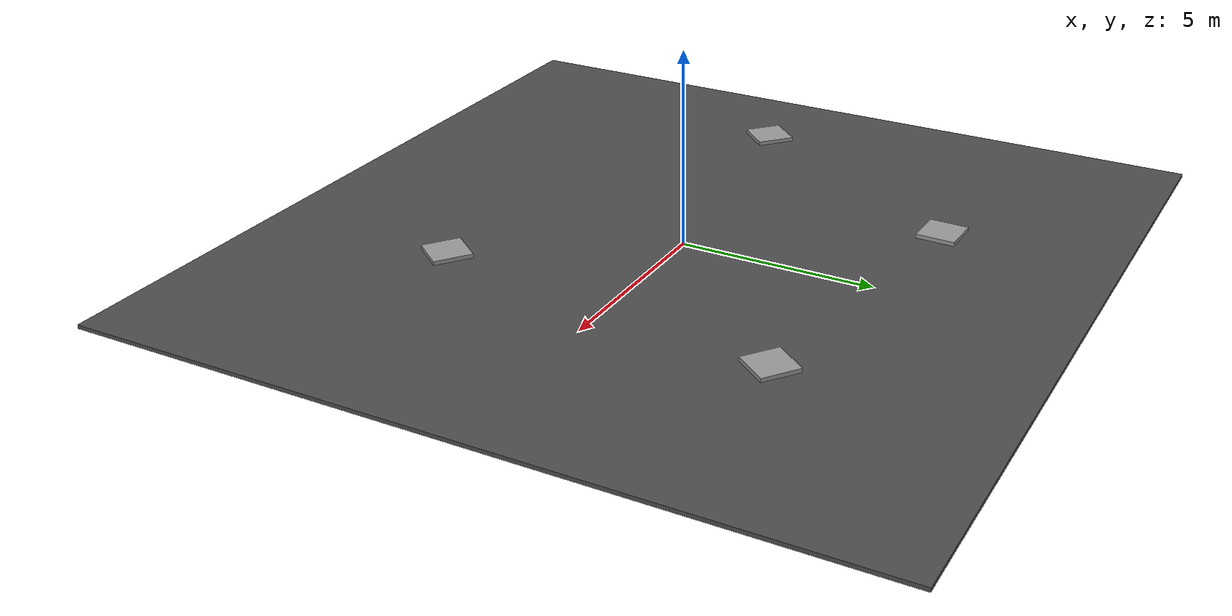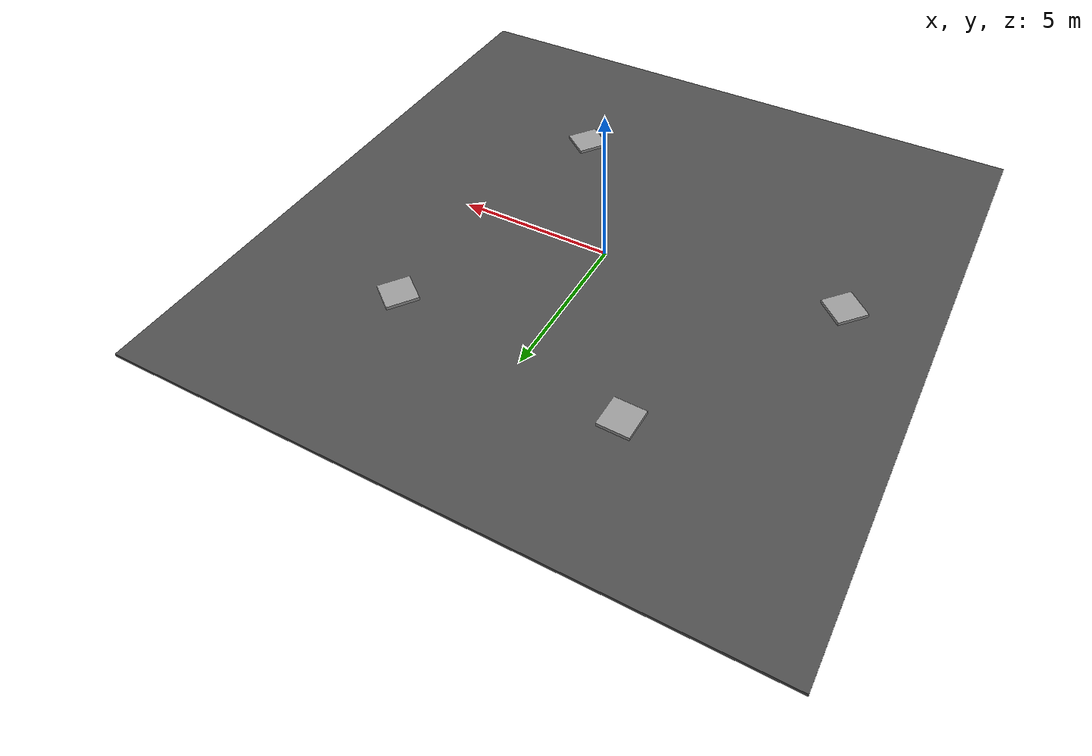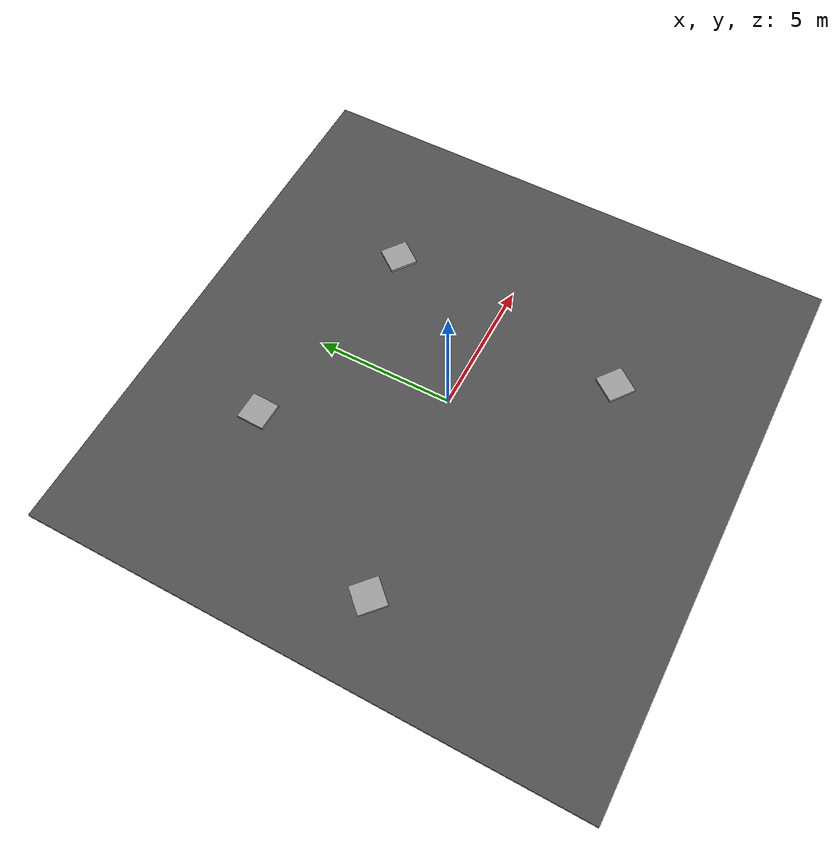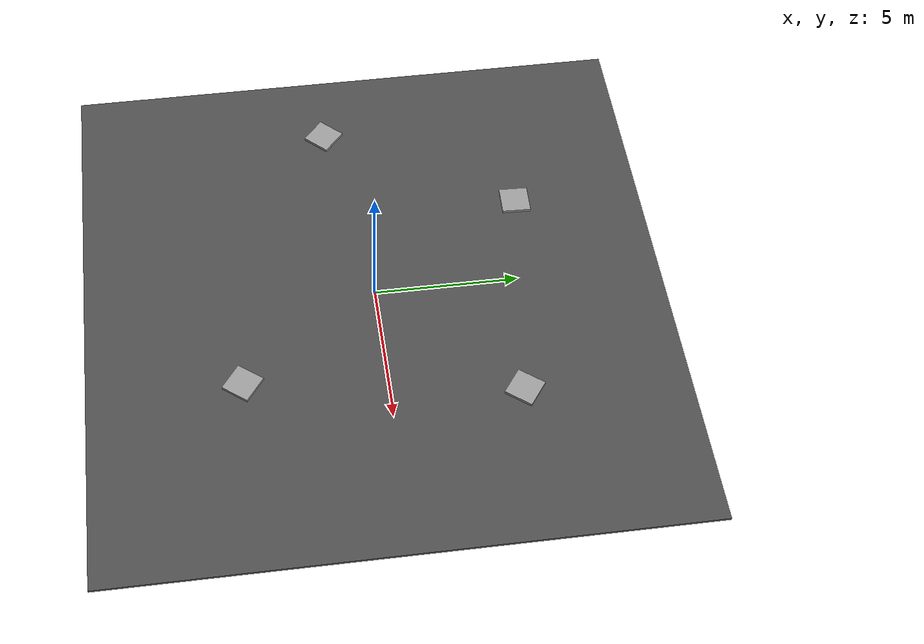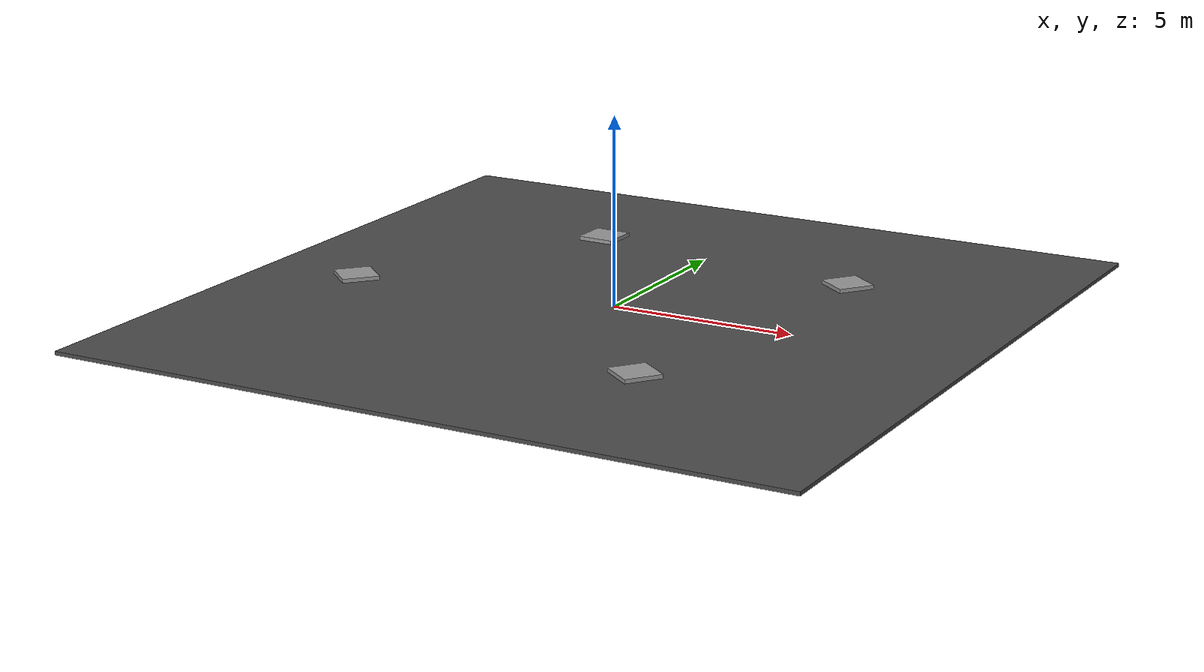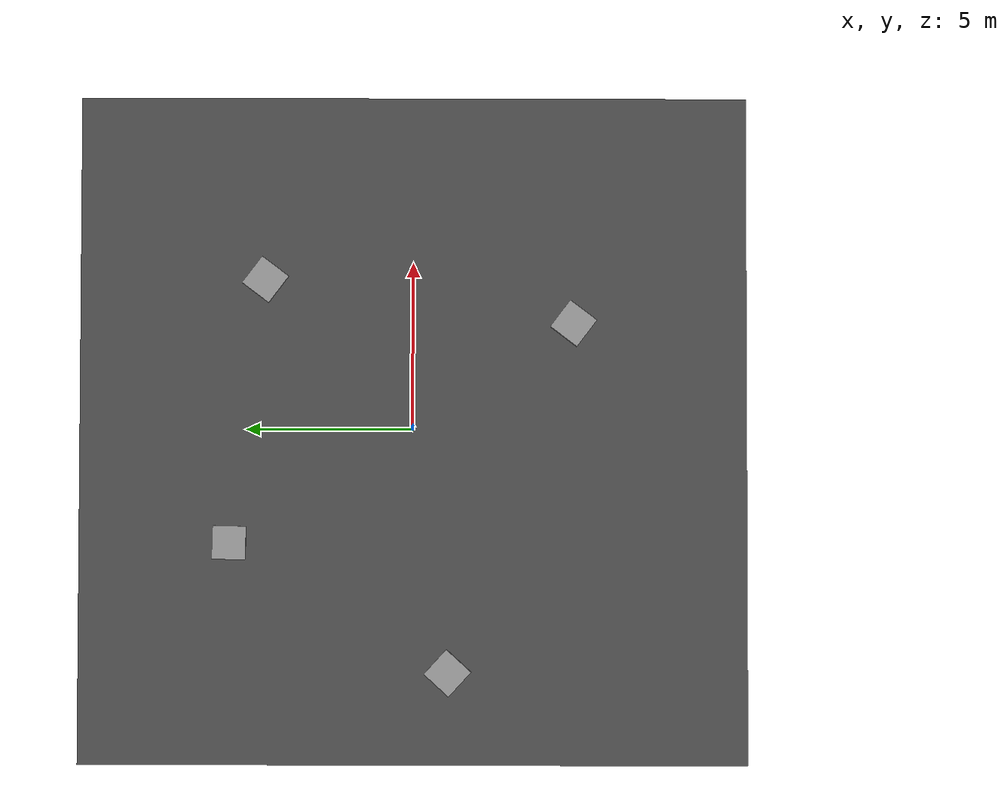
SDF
<sdf version="1.6">
 <world name="default">
  <light name="sun" type="directional">
   <pose>0 0 10 0 -0 0</pose>
   <diffuse>0.8 0.8 0.8 1</diffuse>
   <specular>0.1 0.1 0.1 1</specular>
   <attenuation>
    <range>1000</range>
    <constant>0.9</constant>
    <linear>0.01</linear>
    <quadratic>0.001</quadratic>
   </attenuation>
   <direction>-0.5 0.5 -1</direction>
  </light>
  <gravity>0 0 -9.8</gravity>
  <magnetic_field>6e-06 2.3e-05 -4.2e-05</magnetic_field>
  <atmosphere type="adiabatic"/>
  <physics name="default_physics" default="0" type="ode">
   <max_step_size>0.001</max_step_size>
   <real_time_factor>1</real_time_factor>
   <real_time_update_rate>1000</real_time_update_rate>
  </physics>
  <scene><ambient>0.4 0.4 0.4 1</ambient><background>0.7 0.7 0.7 1</background><shadows>1</shadows></scene>
  <spherical_coordinates>
   <surface_model>EARTH_WGS84</surface_model>
   <latitude_deg>0</latitude_deg>
   <longitude_deg>0</longitude_deg>
   <elevation>0</elevation>
   <heading_deg>0</heading_deg>
  </spherical_coordinates>
  <model name="asphalt_plane">
   <static>1</static>
   <link name="link">
    <collision name="collision"><geometry><box><size>20 20 0.1</size></box></geometry></collision>
    <visual name="visual">
     <cast_shadows>0</cast_shadows>
     <geometry><box><size>20 20 0.1</size></box></geometry>
     <material>
      <script>
       <uri>model://asphalt_plane/materials/scripts</uri>
       <uri>model://asphalt_plane/materials/textures</uri>
       <name>vrc/asphalt</name>
      </script>
     </material>
    </visual>
   </link>
  </model>
  <model name="unit_box_0_clone">
   <pose>3.21314 -4.80285 0.102551 0 0 -0.64782</pose>
   <link name="link">
    <inertial>
     <mass>1</mass>
     <inertia>
      <ixx>0.166667</ixx>
      <ixy>0</ixy>
      <ixz>0</ixz>
      <iyy>0.166667</iyy>
      <iyz>0</iyz>
      <izz>0.166667</izz>
     </inertia>
    </inertial>
    <collision name="collision"><geometry><box><size>1 1 0.105101</size></box></geometry></collision>
    <visual name="visual">
     <geometry><box><size>1 1 0.105101</size></box></geometry>
     <material>
      <script><name>Gazebo/Grey</name><uri>file://media/materials/scripts/gazebo.material</uri></script>
     </material>
    </visual>
   </link>
  </model>
  <model name="unit_box_0_clone_clone">
   <pose>-3.3824 5.50239 0.10255 0 0 -0.027513</pose>
   <link name="link">
    <inertial>
     <mass>1</mass>
     <inertia>
      <ixx>0.166667</ixx>
      <ixy>0</ixy>
      <ixz>0</ixz>
      <iyy>0.166667</iyy>
      <iyz>0</iyz>
      <izz>0.166667</izz>
     </inertia>
    </inertial>
    <collision name="collision"><geometry><box><size>1 1 0.105101</size></box></geometry></collision>
    <visual name="visual">
     <geometry><box><size>1 1 0.105101</size></box></geometry>
     <material>
      <script><name>Gazebo/Grey</name><uri>file://media/materials/scripts/gazebo.material</uri></script>
     </material>
    </visual>
   </link>
  </model>
  <model name="unit_box_0_clone_clone_0">
   <pose>-7.25517 -1.0344 0.10255 0 0 -0.740056</pose>
   <link name="link">
    <inertial>
     <mass>1</mass>
     <inertia>
      <ixx>0.166667</ixx>
      <ixy>0</ixy>
      <ixz>0</ixz>
      <iyy>0.166667</iyy>
      <iyz>0</iyz>
      <izz>0.166667</izz>
     </inertia>
    </inertial>
    <collision name="collision"><geometry><box><size>1 1 0.105101</size></box></geometry></collision>
    <visual name="visual">
     <geometry><box><size>1 1 0.105101</size></box></geometry>
     <material>
      <script><name>Gazebo/Grey</name><uri>file://media/materials/scripts/gazebo.material</uri></script>
     </material>
    </visual>
   </link>
  </model>
  <model name="unit_box_0_clone_clone_1">
   <pose>4.51257 4.44663 0.10255 0 0 -0.64782</pose>
   <link name="link">
    <inertial>
     <mass>1</mass>
     <inertia>
      <ixx>0.166667</ixx>
      <ixy>0</ixy>
      <ixz>0</ixz>
      <iyy>0.166667</iyy>
      <iyz>0</iyz>
      <izz>0.166667</izz>
     </inertia>
    </inertial>
    <collision name="collision"><geometry><box><size>1 1 0.105101</size></box></geometry></collision>
    <visual name="visual">
     <geometry><box><size>1 1 0.105101</size></box></geometry>
     <material>
      <script><name>Gazebo/Grey</name><uri>file://media/materials/scripts/gazebo.material</uri></script>
     </material>
    </visual>
   </link>
  </model>
 </world>
</sdf>
